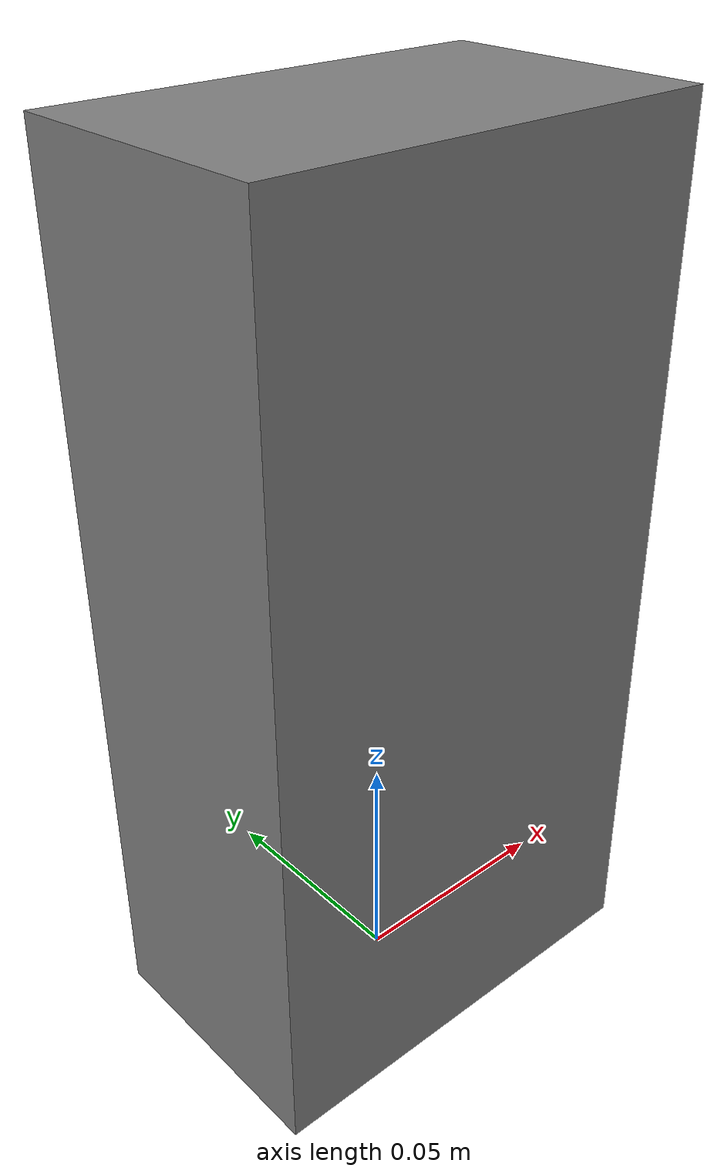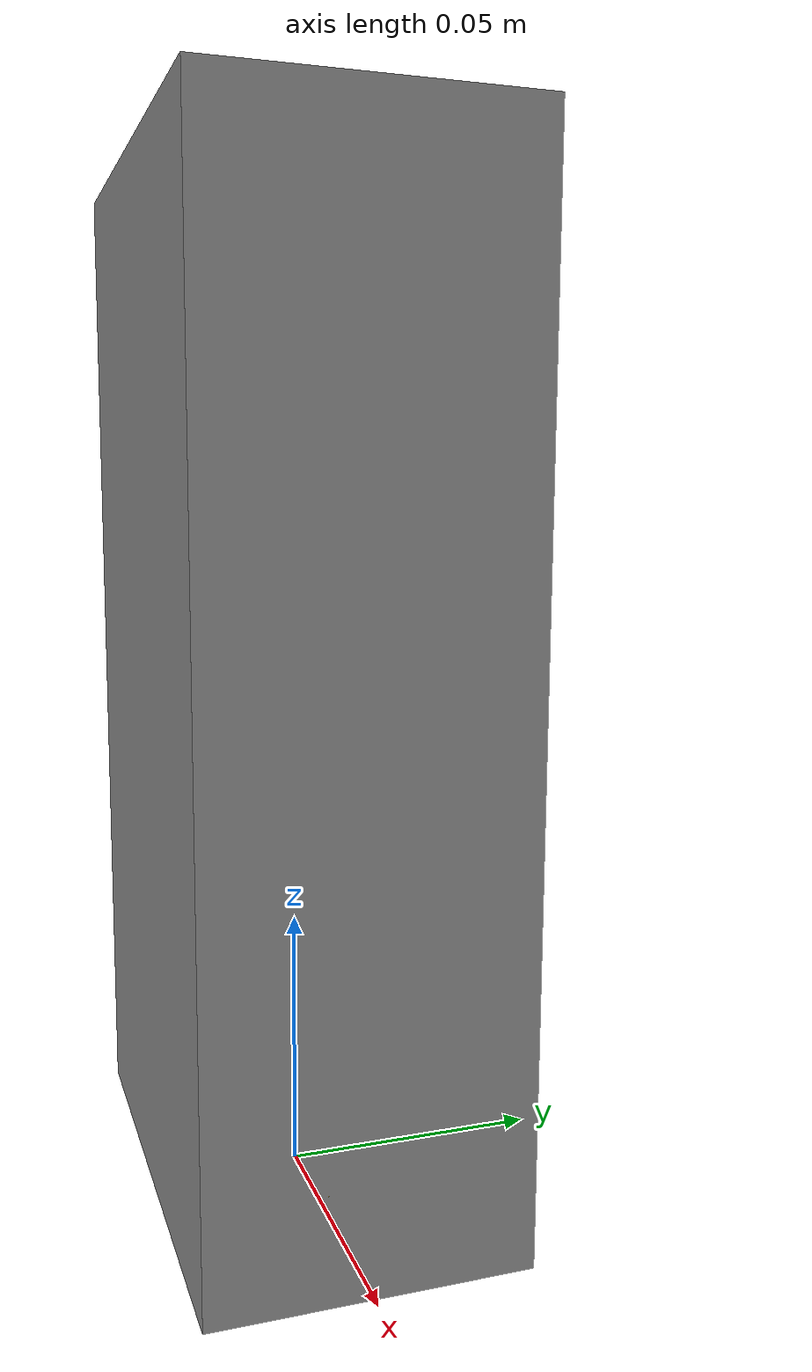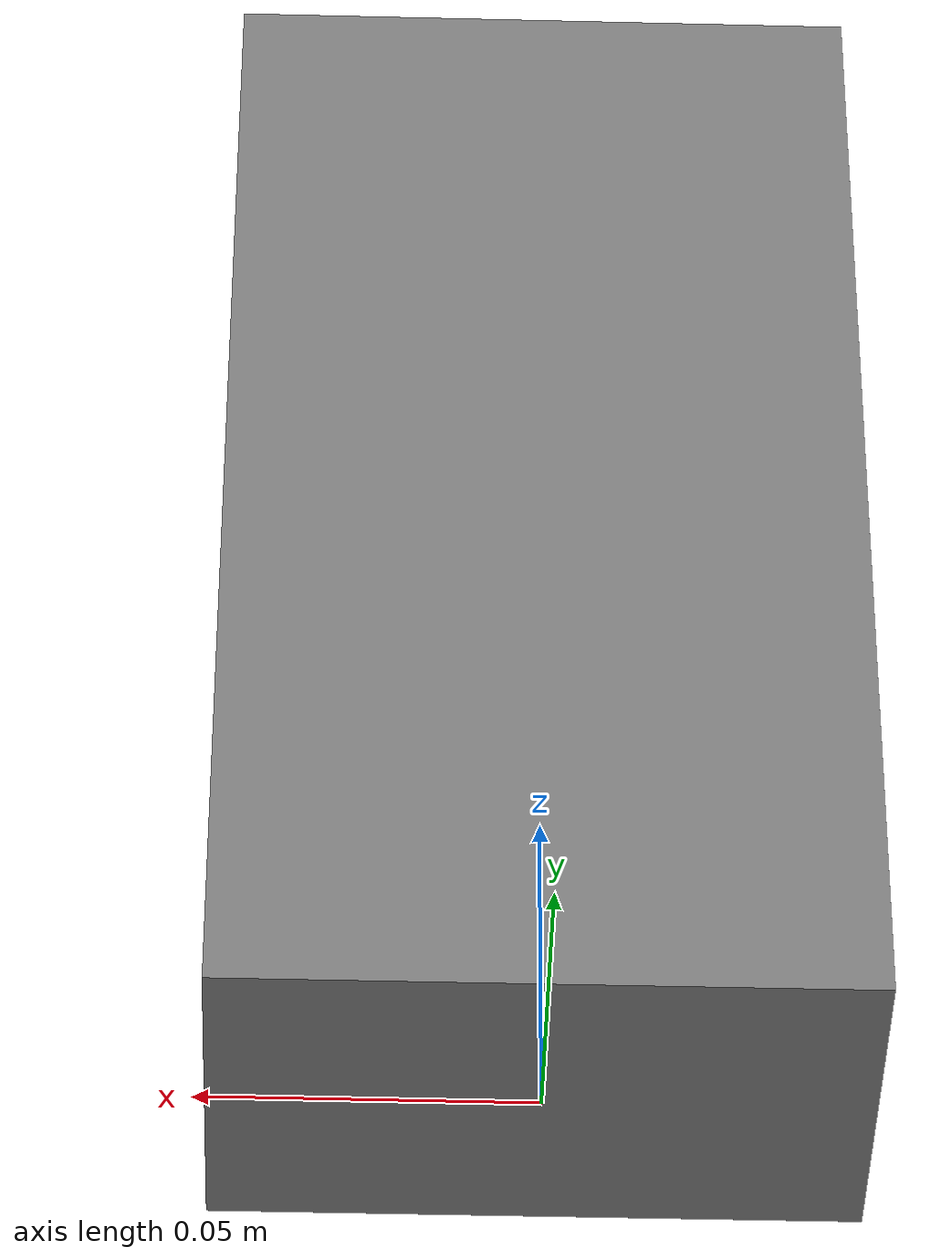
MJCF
<mujoco model="yellow_mustard">
  <asset>
    <material name="yellow_mustard_mat" rgba="0.9 0.78 0.18 1" specular="0.3" shininess="0.1"/>
    <mesh name="yellow_mustard_vis" file="yellow_mustard_libero.obj" scale="1 1 1"/>
  </asset>
  <worldbody>
    <body>
      <body name="object">
        <geom type="mesh" mesh="yellow_mustard_vis" material="yellow_mustard_mat" group="1" contype="0" conaffinity="0"/>
        <geom name="yellow_mustard_collision" type="box" size="0.04820 0.02904 0.09575" pos="0 0 0.09575" group="0" density="100" friction="0.95 0.3 0.1" solimp="0.998 0.998 0.001" solref="0.001 1"/>
      </body>
      <site rgba="0 0 0 0" size="0.005" pos="0 0 0" name="bottom_site"/>
      <site rgba="0 0 0 0" size="0.005" pos="0 0 0.19150" name="top_site"/>
      <site rgba="0 0 0 0" size="0.005" pos="0.04820 0 0" name="horizontal_radius_site"/>
    </body>
  </worldbody>
</mujoco>
